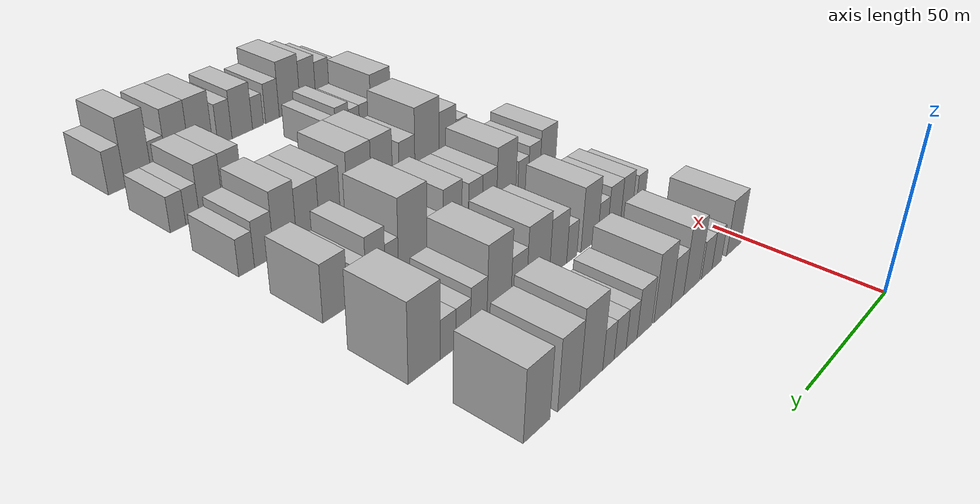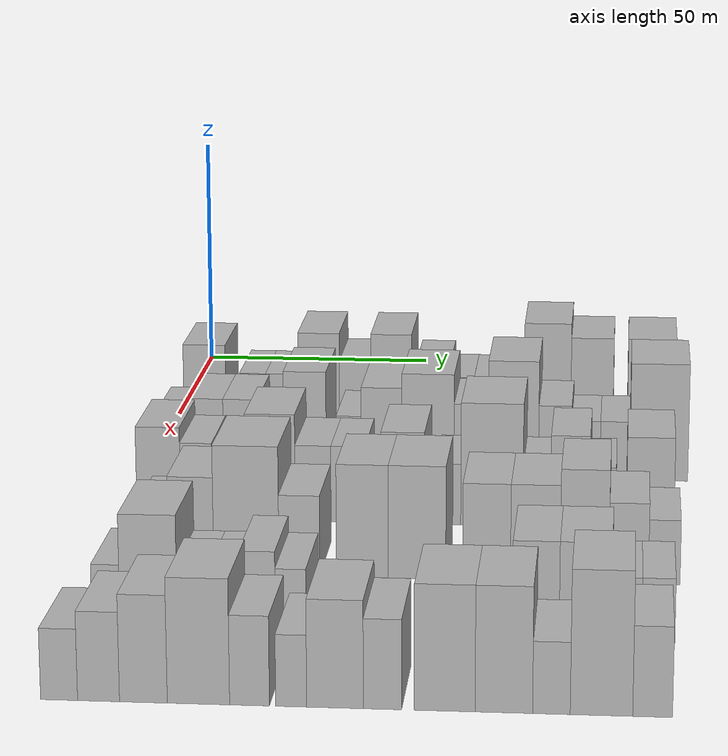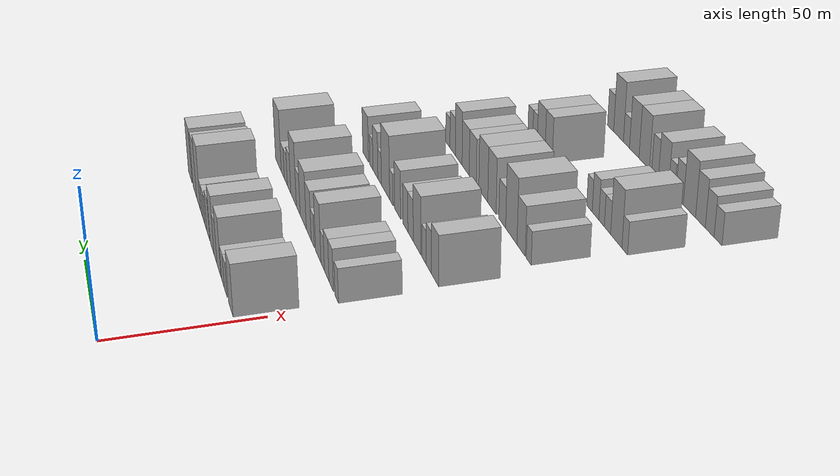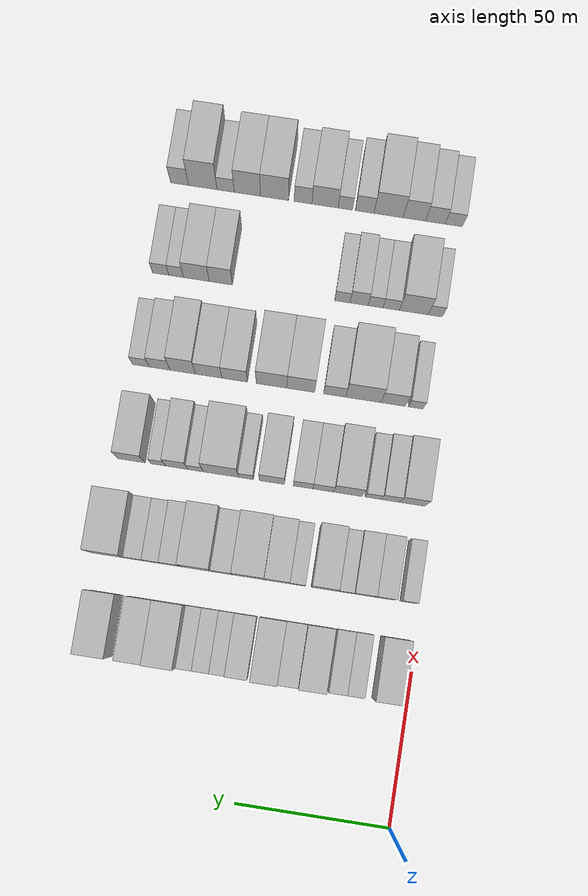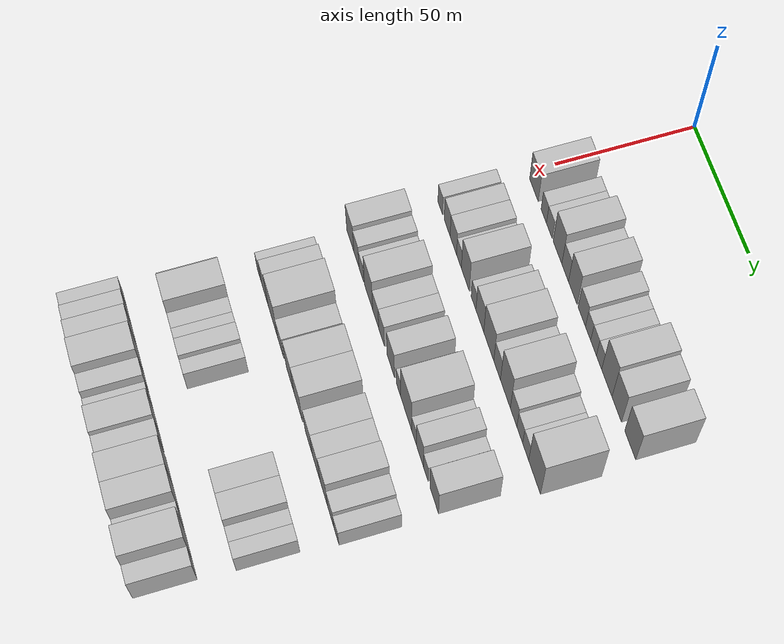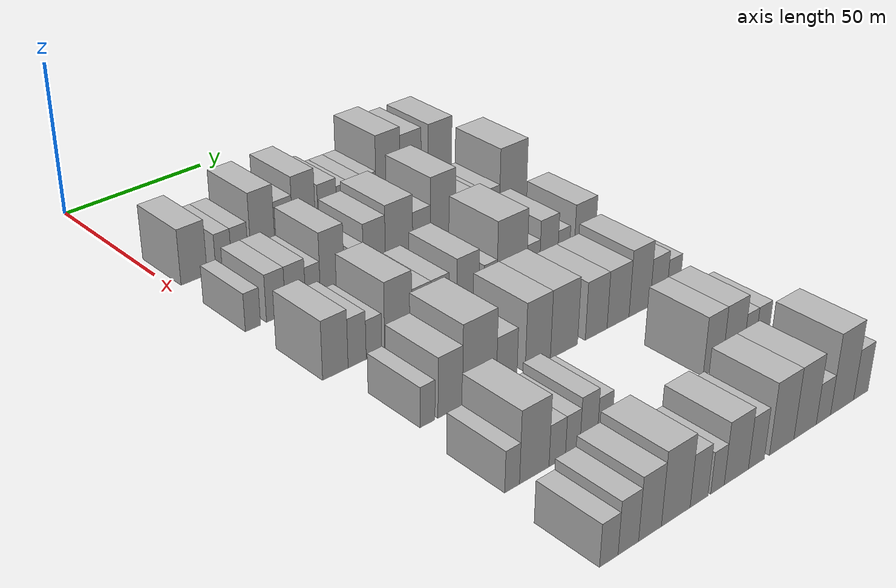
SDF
<sdf version="1.6">
 <world name="default">
  <model name="building_61">
   <static>1</static>
   <pose>50.0000 7.1220 0 0.000000 0.000000 0.000000</pose>
   <link name="link">
    <pose>0 0 9.00 0 0 0</pose>
    <collision name="collision"><geometry><box><size>20.0000 8.9793 18.0000</size></box></geometry></collision>
    <visual name="visual">
     <cast_shadows>0</cast_shadows>
     <geometry><box><size>20.0000 8.9793 18.0000</size></box></geometry>
     <material>
      <script>
       <uri>model://HANNAS_wall/materials/scripts</uri>
       <uri>model://HANNAS_wall/materials/textures</uri>
       <name>vrc/HANNAS_wall</name>
      </script>
     </material>
    </visual>
   </link>
  </model>
  <model name="building_62">
   <static>1</static>
   <pose>50.0000 17.3783 0 0.000000 0.000000 0.000000</pose>
   <link name="link">
    <pose>0 0 6.00 0 0 0</pose>
    <collision name="collision"><geometry><box><size>20.0000 5.5332 12.0000</size></box></geometry></collision>
    <visual name="visual">
     <cast_shadows>0</cast_shadows>
     <geometry><box><size>20.0000 5.5332 12.0000</size></box></geometry>
     <material>
      <script>
       <uri>model://HANNAS_wall/materials/scripts</uri>
       <uri>model://HANNAS_wall/materials/textures</uri>
       <name>vrc/HANNAS_wall</name>
      </script>
     </material>
    </visual>
   </link>
  </model>
  <model name="building_63">
   <static>1</static>
   <pose>50.0000 23.1135 0 0.000000 0.000000 0.000000</pose>
   <link name="link">
    <pose>0 0 6.00 0 0 0</pose>
    <collision name="collision"><geometry><box><size>20.0000 5.9373 12.0000</size></box></geometry></collision>
    <visual name="visual">
     <cast_shadows>0</cast_shadows>
     <geometry><box><size>20.0000 5.9373 12.0000</size></box></geometry>
     <material>
      <script>
       <uri>model://HANNAS_wall/materials/scripts</uri>
       <uri>model://HANNAS_wall/materials/textures</uri>
       <name>vrc/HANNAS_wall</name>
      </script>
     </material>
    </visual>
   </link>
  </model>
  <model name="building_64">
   <static>1</static>
   <pose>50.0000 31.4604 0 0.000000 0.000000 0.000000</pose>
   <link name="link">
    <pose>0 0 10.50 0 0 0</pose>
    <collision name="collision"><geometry><box><size>20.0000 8.7566 21.0000</size></box></geometry></collision>
    <visual name="visual">
     <cast_shadows>0</cast_shadows>
     <geometry><box><size>20.0000 8.7566 21.0000</size></box></geometry>
     <material>
      <script>
       <uri>model://HANNAS_wall/materials/scripts</uri>
       <uri>model://HANNAS_wall/materials/textures</uri>
       <name>vrc/HANNAS_wall</name>
      </script>
     </material>
    </visual>
   </link>
  </model>
  <model name="building_65">
   <static>1</static>
   <pose>50.0000 39.1903 0 0.000000 0.000000 0.000000</pose>
   <link name="link">
    <pose>0 0 7.50 0 0 0</pose>
    <collision name="collision"><geometry><box><size>20.0000 6.7032 15.0000</size></box></geometry></collision>
    <visual name="visual">
     <cast_shadows>0</cast_shadows>
     <geometry><box><size>20.0000 6.7032 15.0000</size></box></geometry>
     <material>
      <script>
       <uri>model://HANNAS_wall/materials/scripts</uri>
       <uri>model://HANNAS_wall/materials/textures</uri>
       <name>vrc/HANNAS_wall</name>
      </script>
     </material>
    </visual>
   </link>
  </model>
  <model name="building_66">
   <static>1</static>
   <pose>50.0000 46.8403 0 0.000000 0.000000 0.000000</pose>
   <link name="link">
    <pose>0 0 10.50 0 0 0</pose>
    <collision name="collision"><geometry><box><size>20.0000 8.5968 21.0000</size></box></geometry></collision>
    <visual name="visual">
     <cast_shadows>0</cast_shadows>
     <geometry><box><size>20.0000 8.5968 21.0000</size></box></geometry>
     <material>
      <script>
       <uri>model://HANNAS_wall/materials/scripts</uri>
       <uri>model://HANNAS_wall/materials/textures</uri>
       <name>vrc/HANNAS_wall</name>
      </script>
     </material>
    </visual>
   </link>
  </model>
  <model name="building_67">
   <static>1</static>
   <pose>50.0000 55.7313 0 0.000000 0.000000 0.000000</pose>
   <link name="link">
    <pose>0 0 7.50 0 0 0</pose>
    <collision name="collision"><geometry><box><size>20.0000 7.1852 15.0000</size></box></geometry></collision>
    <visual name="visual">
     <cast_shadows>0</cast_shadows>
     <geometry><box><size>20.0000 7.1852 15.0000</size></box></geometry>
     <material>
      <script>
       <uri>model://HANNAS_wall/materials/scripts</uri>
       <uri>model://HANNAS_wall/materials/textures</uri>
       <name>vrc/HANNAS_wall</name>
      </script>
     </material>
    </visual>
   </link>
  </model>
  <model name="building_68">
   <static>1</static>
   <pose>50.0000 61.8611 0 0.000000 0.000000 0.000000</pose>
   <link name="link">
    <pose>0 0 6.00 0 0 0</pose>
    <collision name="collision"><geometry><box><size>20.0000 5.0744 12.0000</size></box></geometry></collision>
    <visual name="visual">
     <cast_shadows>0</cast_shadows>
     <geometry><box><size>20.0000 5.0744 12.0000</size></box></geometry>
     <material>
      <script>
       <uri>model://HANNAS_wall/materials/scripts</uri>
       <uri>model://HANNAS_wall/materials/textures</uri>
       <name>vrc/HANNAS_wall</name>
      </script>
     </material>
    </visual>
   </link>
  </model>
  <model name="building_69">
   <static>1</static>
   <pose>50.0000 67.1588 0 0.000000 0.000000 0.000000</pose>
   <link name="link">
    <pose>0 0 6.00 0 0 0</pose>
    <collision name="collision"><geometry><box><size>20.0000 5.5208 12.0000</size></box></geometry></collision>
    <visual name="visual">
     <cast_shadows>0</cast_shadows>
     <geometry><box><size>20.0000 5.5208 12.0000</size></box></geometry>
     <material>
      <script>
       <uri>model://HANNAS_wall/materials/scripts</uri>
       <uri>model://HANNAS_wall/materials/textures</uri>
       <name>vrc/HANNAS_wall</name>
      </script>
     </material>
    </visual>
   </link>
  </model>
  <model name="building_70">
   <static>1</static>
   <pose>50.0000 72.4439 0 0.000000 0.000000 0.000000</pose>
   <link name="link">
    <pose>0 0 6.00 0 0 0</pose>
    <collision name="collision"><geometry><box><size>20.0000 5.0494 12.0000</size></box></geometry></collision>
    <visual name="visual">
     <cast_shadows>0</cast_shadows>
     <geometry><box><size>20.0000 5.0494 12.0000</size></box></geometry>
     <material>
      <script>
       <uri>model://HANNAS_wall/materials/scripts</uri>
       <uri>model://HANNAS_wall/materials/textures</uri>
       <name>vrc/HANNAS_wall</name>
      </script>
     </material>
    </visual>
   </link>
  </model>
  <model name="building_71">
   <static>1</static>
   <pose>50.0000 79.8675 0 0.000000 0.000000 0.000000</pose>
   <link name="link">
    <pose>0 0 12.00 0 0 0</pose>
    <collision name="collision"><geometry><box><size>20.0000 9.7978 24.0000</size></box></geometry></collision>
    <visual name="visual">
     <cast_shadows>0</cast_shadows>
     <geometry><box><size>20.0000 9.7978 24.0000</size></box></geometry>
     <material>
      <script>
       <uri>model://HANNAS_wall/materials/scripts</uri>
       <uri>model://HANNAS_wall/materials/textures</uri>
       <name>vrc/HANNAS_wall</name>
      </script>
     </material>
    </visual>
   </link>
  </model>
  <model name="building_72">
   <static>1</static>
   <pose>50.0000 89.2141 0 0.000000 0.000000 0.000000</pose>
   <link name="link">
    <pose>0 0 10.50 0 0 0</pose>
    <collision name="collision"><geometry><box><size>20.0000 8.8954 21.0000</size></box></geometry></collision>
    <visual name="visual">
     <cast_shadows>0</cast_shadows>
     <geometry><box><size>20.0000 8.8954 21.0000</size></box></geometry>
     <material>
      <script>
       <uri>model://HANNAS_wall/materials/scripts</uri>
       <uri>model://HANNAS_wall/materials/textures</uri>
       <name>vrc/HANNAS_wall</name>
      </script>
     </material>
    </visual>
   </link>
  </model>
  <model name="building_73">
   <static>1</static>
   <pose>50.0000 101.7054 0 0.000000 0.000000 0.000000</pose>
   <link name="link">
    <pose>0 0 10.50 0 0 0</pose>
    <collision name="collision"><geometry><box><size>20.0000 10.0871 21.0000</size></box></geometry></collision>
    <visual name="visual">
     <cast_shadows>0</cast_shadows>
     <geometry><box><size>20.0000 10.0871 21.0000</size></box></geometry>
     <material>
      <script>
       <uri>model://HANNAS_wall/materials/scripts</uri>
       <uri>model://HANNAS_wall/materials/textures</uri>
       <name>vrc/HANNAS_wall</name>
      </script>
     </material>
    </visual>
   </link>
  </model>
  <model name="building_189">
   <static>1</static>
   <pose>82.0000 4.5270 0 0.000000 0.000000 0.000000</pose>
   <link name="link">
    <pose>0 0 6.00 0 0 0</pose>
    <collision name="collision"><geometry><box><size>20.0000 5.0901 12.0000</size></box></geometry></collision>
    <visual name="visual">
     <cast_shadows>0</cast_shadows>
     <geometry><box><size>20.0000 5.0901 12.0000</size></box></geometry>
     <material>
      <script>
       <uri>model://HANNAS_wall/materials/scripts</uri>
       <uri>model://HANNAS_wall/materials/textures</uri>
       <name>vrc/HANNAS_wall</name>
      </script>
     </material>
    </visual>
   </link>
  </model>
  <model name="building_190">
   <static>1</static>
   <pose>82.0000 12.3116 0 0.000000 0.000000 0.000000</pose>
   <link name="link">
    <pose>0 0 7.50 0 0 0</pose>
    <collision name="collision"><geometry><box><size>20.0000 6.4791 15.0000</size></box></geometry></collision>
    <visual name="visual">
     <cast_shadows>0</cast_shadows>
     <geometry><box><size>20.0000 6.4791 15.0000</size></box></geometry>
     <material>
      <script>
       <uri>model://HANNAS_wall/materials/scripts</uri>
       <uri>model://HANNAS_wall/materials/textures</uri>
       <name>vrc/HANNAS_wall</name>
      </script>
     </material>
    </visual>
   </link>
  </model>
  <model name="building_191">
   <static>1</static>
   <pose>82.0000 19.0576 0 0.000000 0.000000 0.000000</pose>
   <link name="link">
    <pose>0 0 7.50 0 0 0</pose>
    <collision name="collision"><geometry><box><size>20.0000 7.0130 15.0000</size></box></geometry></collision>
    <visual name="visual">
     <cast_shadows>0</cast_shadows>
     <geometry><box><size>20.0000 7.0130 15.0000</size></box></geometry>
     <material>
      <script>
       <uri>model://HANNAS_wall/materials/scripts</uri>
       <uri>model://HANNAS_wall/materials/textures</uri>
       <name>vrc/HANNAS_wall</name>
      </script>
     </material>
    </visual>
   </link>
  </model>
  <model name="building_192">
   <static>1</static>
   <pose>82.0000 25.1872 0 0.000000 0.000000 0.000000</pose>
   <link name="link">
    <pose>0 0 6.00 0 0 0</pose>
    <collision name="collision"><geometry><box><size>20.0000 5.2461 12.0000</size></box></geometry></collision>
    <visual name="visual">
     <cast_shadows>0</cast_shadows>
     <geometry><box><size>20.0000 5.2461 12.0000</size></box></geometry>
     <material>
      <script>
       <uri>model://HANNAS_wall/materials/scripts</uri>
       <uri>model://HANNAS_wall/materials/textures</uri>
       <name>vrc/HANNAS_wall</name>
      </script>
     </material>
    </visual>
   </link>
  </model>
  <model name="building_193">
   <static>1</static>
   <pose>82.0000 32.0961 0 0.000000 0.000000 0.000000</pose>
   <link name="link">
    <pose>0 0 10.50 0 0 0</pose>
    <collision name="collision"><geometry><box><size>20.0000 8.5717 21.0000</size></box></geometry></collision>
    <visual name="visual">
     <cast_shadows>0</cast_shadows>
     <geometry><box><size>20.0000 8.5717 21.0000</size></box></geometry>
     <material>
      <script>
       <uri>model://HANNAS_wall/materials/scripts</uri>
       <uri>model://HANNAS_wall/materials/textures</uri>
       <name>vrc/HANNAS_wall</name>
      </script>
     </material>
    </visual>
   </link>
  </model>
  <model name="building_194">
   <static>1</static>
   <pose>82.0000 40.9113 0 0.000000 0.000000 0.000000</pose>
   <link name="link">
    <pose>0 0 6.00 0 0 0</pose>
    <collision name="collision"><geometry><box><size>20.0000 5.0586 12.0000</size></box></geometry></collision>
    <visual name="visual">
     <cast_shadows>0</cast_shadows>
     <geometry><box><size>20.0000 5.0586 12.0000</size></box></geometry>
     <material>
      <script>
       <uri>model://HANNAS_wall/materials/scripts</uri>
       <uri>model://HANNAS_wall/materials/textures</uri>
       <name>vrc/HANNAS_wall</name>
      </script>
     </material>
    </visual>
   </link>
  </model>
  <model name="building_195">
   <static>1</static>
   <pose>82.0000 47.5440 0 0.000000 0.000000 0.000000</pose>
   <link name="link">
    <pose>0 0 9.00 0 0 0</pose>
    <collision name="collision"><geometry><box><size>20.0000 8.2069 18.0000</size></box></geometry></collision>
    <visual name="visual">
     <cast_shadows>0</cast_shadows>
     <geometry><box><size>20.0000 8.2069 18.0000</size></box></geometry>
     <material>
      <script>
       <uri>model://HANNAS_wall/materials/scripts</uri>
       <uri>model://HANNAS_wall/materials/textures</uri>
       <name>vrc/HANNAS_wall</name>
      </script>
     </material>
    </visual>
   </link>
  </model>
  <model name="building_196">
   <static>1</static>
   <pose>82.0000 56.8818 0 0.000000 0.000000 0.000000</pose>
   <link name="link">
    <pose>0 0 10.50 0 0 0</pose>
    <collision name="collision"><geometry><box><size>20.0000 10.4686 21.0000</size></box></geometry></collision>
    <visual name="visual">
     <cast_shadows>0</cast_shadows>
     <geometry><box><size>20.0000 10.4686 21.0000</size></box></geometry>
     <material>
      <script>
       <uri>model://HANNAS_wall/materials/scripts</uri>
       <uri>model://HANNAS_wall/materials/textures</uri>
       <name>vrc/HANNAS_wall</name>
      </script>
     </material>
    </visual>
   </link>
  </model>
  <model name="building_197">
   <static>1</static>
   <pose>82.0000 65.5435 0 0.000000 0.000000 0.000000</pose>
   <link name="link">
    <pose>0 0 7.50 0 0 0</pose>
    <collision name="collision"><geometry><box><size>20.0000 6.8547 15.0000</size></box></geometry></collision>
    <visual name="visual">
     <cast_shadows>0</cast_shadows>
     <geometry><box><size>20.0000 6.8547 15.0000</size></box></geometry>
     <material>
      <script>
       <uri>model://HANNAS_wall/materials/scripts</uri>
       <uri>model://HANNAS_wall/materials/textures</uri>
       <name>vrc/HANNAS_wall</name>
      </script>
     </material>
    </visual>
   </link>
  </model>
  <model name="building_198">
   <static>1</static>
   <pose>82.0000 74.0062 0 0.000000 0.000000 0.000000</pose>
   <link name="link">
    <pose>0 0 12.00 0 0 0</pose>
    <collision name="collision"><geometry><box><size>20.0000 10.0708 24.0000</size></box></geometry></collision>
    <visual name="visual">
     <cast_shadows>0</cast_shadows>
     <geometry><box><size>20.0000 10.0708 24.0000</size></box></geometry>
     <material>
      <script>
       <uri>model://HANNAS_wall/materials/scripts</uri>
       <uri>model://HANNAS_wall/materials/textures</uri>
       <name>vrc/HANNAS_wall</name>
      </script>
     </material>
    </visual>
   </link>
  </model>
  <model name="building_199">
   <static>1</static>
   <pose>82.0000 82.3226 0 0.000000 0.000000 0.000000</pose>
   <link name="link">
    <pose>0 0 7.50 0 0 0</pose>
    <collision name="collision"><geometry><box><size>20.0000 6.5620 15.0000</size></box></geometry></collision>
    <visual name="visual">
     <cast_shadows>0</cast_shadows>
     <geometry><box><size>20.0000 6.5620 15.0000</size></box></geometry>
     <material>
      <script>
       <uri>model://HANNAS_wall/materials/scripts</uri>
       <uri>model://HANNAS_wall/materials/textures</uri>
       <name>vrc/HANNAS_wall</name>
      </script>
     </material>
    </visual>
   </link>
  </model>
  <model name="building_200">
   <static>1</static>
   <pose>82.0000 88.4710 0 0.000000 0.000000 0.000000</pose>
   <link name="link">
    <pose>0 0 6.00 0 0 0</pose>
    <collision name="collision"><geometry><box><size>20.0000 5.7347 12.0000</size></box></geometry></collision>
    <visual name="visual">
     <cast_shadows>0</cast_shadows>
     <geometry><box><size>20.0000 5.7347 12.0000</size></box></geometry>
     <material>
      <script>
       <uri>model://HANNAS_wall/materials/scripts</uri>
       <uri>model://HANNAS_wall/materials/textures</uri>
       <name>vrc/HANNAS_wall</name>
      </script>
     </material>
    </visual>
   </link>
  </model>
  <model name="building_201">
   <static>1</static>
   <pose>82.0000 94.2968 0 0.000000 0.000000 0.000000</pose>
   <link name="link">
    <pose>0 0 6.00 0 0 0</pose>
    <collision name="collision"><geometry><box><size>20.0000 5.9169 12.0000</size></box></geometry></collision>
    <visual name="visual">
     <cast_shadows>0</cast_shadows>
     <geometry><box><size>20.0000 5.9169 12.0000</size></box></geometry>
     <material>
      <script>
       <uri>model://HANNAS_wall/materials/scripts</uri>
       <uri>model://HANNAS_wall/materials/textures</uri>
       <name>vrc/HANNAS_wall</name>
      </script>
     </material>
    </visual>
   </link>
  </model>
  <model name="building_202">
   <static>1</static>
   <pose>82.0000 103.0330 0 0.000000 0.000000 0.000000</pose>
   <link name="link">
    <pose>0 0 12.00 0 0 0</pose>
    <collision name="collision"><geometry><box><size>20.0000 11.5555 24.0000</size></box></geometry></collision>
    <visual name="visual">
     <cast_shadows>0</cast_shadows>
     <geometry><box><size>20.0000 11.5555 24.0000</size></box></geometry>
     <material>
      <script>
       <uri>model://HANNAS_wall/materials/scripts</uri>
       <uri>model://HANNAS_wall/materials/textures</uri>
       <name>vrc/HANNAS_wall</name>
      </script>
     </material>
    </visual>
   </link>
  </model>
  <model name="building_313">
   <static>1</static>
   <pose>114.0000 7.5327 0 0.000000 0.000000 0.000000</pose>
   <link name="link">
    <pose>0 0 9.00 0 0 0</pose>
    <collision name="collision"><geometry><box><size>20.0000 8.4498 18.0000</size></box></geometry></collision>
    <visual name="visual">
     <cast_shadows>0</cast_shadows>
     <geometry><box><size>20.0000 8.4498 18.0000</size></box></geometry>
     <material>
      <script>
       <uri>model://HANNAS_wall/materials/scripts</uri>
       <uri>model://HANNAS_wall/materials/textures</uri>
       <name>vrc/HANNAS_wall</name>
      </script>
     </material>
    </visual>
   </link>
  </model>
  <model name="building_314">
   <static>1</static>
   <pose>114.0000 14.8176 0 0.000000 0.000000 0.000000</pose>
   <link name="link">
    <pose>0 0 7.50 0 0 0</pose>
    <collision name="collision"><geometry><box><size>20.0000 6.1200 15.0000</size></box></geometry></collision>
    <visual name="visual">
     <cast_shadows>0</cast_shadows>
     <geometry><box><size>20.0000 6.1200 15.0000</size></box></geometry>
     <material>
      <script>
       <uri>model://HANNAS_wall/materials/scripts</uri>
       <uri>model://HANNAS_wall/materials/textures</uri>
       <name>vrc/HANNAS_wall</name>
      </script>
     </material>
    </visual>
   </link>
  </model>
  <model name="building_315">
   <static>1</static>
   <pose>114.0000 20.5576 0 0.000000 0.000000 0.000000</pose>
   <link name="link">
    <pose>0 0 6.00 0 0 0</pose>
    <collision name="collision"><geometry><box><size>20.0000 5.3600 12.0000</size></box></geometry></collision>
    <visual name="visual">
     <cast_shadows>0</cast_shadows>
     <geometry><box><size>20.0000 5.3600 12.0000</size></box></geometry>
     <material>
      <script>
       <uri>model://HANNAS_wall/materials/scripts</uri>
       <uri>model://HANNAS_wall/materials/textures</uri>
       <name>vrc/HANNAS_wall</name>
      </script>
     </material>
    </visual>
   </link>
  </model>
  <model name="building_316">
   <static>1</static>
   <pose>114.0000 29.0070 0 0.000000 0.000000 0.000000</pose>
   <link name="link">
    <pose>0 0 10.50 0 0 0</pose>
    <collision name="collision"><geometry><box><size>20.0000 9.5388 21.0000</size></box></geometry></collision>
    <visual name="visual">
     <cast_shadows>0</cast_shadows>
     <geometry><box><size>20.0000 9.5388 21.0000</size></box></geometry>
     <material>
      <script>
       <uri>model://HANNAS_wall/materials/scripts</uri>
       <uri>model://HANNAS_wall/materials/textures</uri>
       <name>vrc/HANNAS_wall</name>
      </script>
     </material>
    </visual>
   </link>
  </model>
  <model name="building_317">
   <static>1</static>
   <pose>114.0000 37.2018 0 0.000000 0.000000 0.000000</pose>
   <link name="link">
    <pose>0 0 7.50 0 0 0</pose>
    <collision name="collision"><geometry><box><size>20.0000 6.8510 15.0000</size></box></geometry></collision>
    <visual name="visual">
     <cast_shadows>0</cast_shadows>
     <geometry><box><size>20.0000 6.8510 15.0000</size></box></geometry>
     <material>
      <script>
       <uri>model://HANNAS_wall/materials/scripts</uri>
       <uri>model://HANNAS_wall/materials/textures</uri>
       <name>vrc/HANNAS_wall</name>
      </script>
     </material>
    </visual>
   </link>
  </model>
  <model name="building_318">
   <static>1</static>
   <pose>114.0000 43.8944 0 0.000000 0.000000 0.000000</pose>
   <link name="link">
    <pose>0 0 7.50 0 0 0</pose>
    <collision name="collision"><geometry><box><size>20.0000 6.5343 15.0000</size></box></geometry></collision>
    <visual name="visual">
     <cast_shadows>0</cast_shadows>
     <geometry><box><size>20.0000 6.5343 15.0000</size></box></geometry>
     <material>
      <script>
       <uri>model://HANNAS_wall/materials/scripts</uri>
       <uri>model://HANNAS_wall/materials/textures</uri>
       <name>vrc/HANNAS_wall</name>
      </script>
     </material>
    </visual>
   </link>
  </model>
  <model name="building_319">
   <static>1</static>
   <pose>114.0000 54.3062 0 0.000000 0.000000 0.000000</pose>
   <link name="link">
    <pose>0 0 9.00 0 0 0</pose>
    <collision name="collision"><geometry><box><size>20.0000 8.2892 18.0000</size></box></geometry></collision>
    <visual name="visual">
     <cast_shadows>0</cast_shadows>
     <geometry><box><size>20.0000 8.2892 18.0000</size></box></geometry>
     <material>
      <script>
       <uri>model://HANNAS_wall/materials/scripts</uri>
       <uri>model://HANNAS_wall/materials/textures</uri>
       <name>vrc/HANNAS_wall</name>
      </script>
     </material>
    </visual>
   </link>
  </model>
  <model name="building_320">
   <static>1</static>
   <pose>114.0000 62.9069 0 0.000000 0.000000 0.000000</pose>
   <link name="link">
    <pose>0 0 6.00 0 0 0</pose>
    <collision name="collision"><geometry><box><size>20.0000 4.9121 12.0000</size></box></geometry></collision>
    <visual name="visual">
     <cast_shadows>0</cast_shadows>
     <geometry><box><size>20.0000 4.9121 12.0000</size></box></geometry>
     <material>
      <script>
       <uri>model://HANNAS_wall/materials/scripts</uri>
       <uri>model://HANNAS_wall/materials/textures</uri>
       <name>vrc/HANNAS_wall</name>
      </script>
     </material>
    </visual>
   </link>
  </model>
  <model name="building_321">
   <static>1</static>
   <pose>114.0000 71.2560 0 0.000000 0.000000 0.000000</pose>
   <link name="link">
    <pose>0 0 12.00 0 0 0</pose>
    <collision name="collision"><geometry><box><size>20.0000 11.7862 24.0000</size></box></geometry></collision>
    <visual name="visual">
     <cast_shadows>0</cast_shadows>
     <geometry><box><size>20.0000 11.7862 24.0000</size></box></geometry>
     <material>
      <script>
       <uri>model://HANNAS_wall/materials/scripts</uri>
       <uri>model://HANNAS_wall/materials/textures</uri>
       <name>vrc/HANNAS_wall</name>
      </script>
     </material>
    </visual>
   </link>
  </model>
  <model name="building_322">
   <static>1</static>
   <pose>114.0000 79.7480 0 0.000000 0.000000 0.000000</pose>
   <link name="link">
    <pose>0 0 6.00 0 0 0</pose>
    <collision name="collision"><geometry><box><size>20.0000 5.1977 12.0000</size></box></geometry></collision>
    <visual name="visual">
     <cast_shadows>0</cast_shadows>
     <geometry><box><size>20.0000 5.1977 12.0000</size></box></geometry>
     <material>
      <script>
       <uri>model://HANNAS_wall/materials/scripts</uri>
       <uri>model://HANNAS_wall/materials/textures</uri>
       <name>vrc/HANNAS_wall</name>
      </script>
     </material>
    </visual>
   </link>
  </model>
  <model name="building_323">
   <static>1</static>
   <pose>114.0000 86.0454 0 0.000000 0.000000 0.000000</pose>
   <link name="link">
    <pose>0 0 9.00 0 0 0</pose>
    <collision name="collision"><geometry><box><size>20.0000 7.3970 18.0000</size></box></geometry></collision>
    <visual name="visual">
     <cast_shadows>0</cast_shadows>
     <geometry><box><size>20.0000 7.3970 18.0000</size></box></geometry>
     <material>
      <script>
       <uri>model://HANNAS_wall/materials/scripts</uri>
       <uri>model://HANNAS_wall/materials/textures</uri>
       <name>vrc/HANNAS_wall</name>
      </script>
     </material>
    </visual>
   </link>
  </model>
  <model name="building_324">
   <static>1</static>
   <pose>114.0000 92.2025 0 0.000000 0.000000 0.000000</pose>
   <link name="link">
    <pose>0 0 6.00 0 0 0</pose>
    <collision name="collision"><geometry><box><size>20.0000 4.9174 12.0000</size></box></geometry></collision>
    <visual name="visual">
     <cast_shadows>0</cast_shadows>
     <geometry><box><size>20.0000 4.9174 12.0000</size></box></geometry>
     <material>
      <script>
       <uri>model://HANNAS_wall/materials/scripts</uri>
       <uri>model://HANNAS_wall/materials/textures</uri>
       <name>vrc/HANNAS_wall</name>
      </script>
     </material>
    </visual>
   </link>
  </model>
  <model name="building_325">
   <static>1</static>
   <pose>114.0000 101.1547 0 0.000000 0.000000 0.000000</pose>
   <link name="link">
    <pose>0 0 9.00 0 0 0</pose>
    <collision name="collision"><geometry><box><size>20.0000 8.9869 18.0000</size></box></geometry></collision>
    <visual name="visual">
     <cast_shadows>0</cast_shadows>
     <geometry><box><size>20.0000 8.9869 18.0000</size></box></geometry>
     <material>
      <script>
       <uri>model://HANNAS_wall/materials/scripts</uri>
       <uri>model://HANNAS_wall/materials/textures</uri>
       <name>vrc/HANNAS_wall</name>
      </script>
     </material>
    </visual>
   </link>
  </model>
  <model name="building_428">
   <static>1</static>
   <pose>146.0000 10.9830 0 0.000000 0.000000 0.000000</pose>
   <link name="link">
    <pose>0 0 6.00 0 0 0</pose>
    <collision name="collision"><geometry><box><size>20.0000 4.9091 12.0000</size></box></geometry></collision>
    <visual name="visual">
     <cast_shadows>0</cast_shadows>
     <geometry><box><size>20.0000 4.9091 12.0000</size></box></geometry>
     <material>
      <script>
       <uri>model://HANNAS_wall/materials/scripts</uri>
       <uri>model://HANNAS_wall/materials/textures</uri>
       <name>vrc/HANNAS_wall</name>
      </script>
     </material>
    </visual>
   </link>
  </model>
  <model name="building_429">
   <static>1</static>
   <pose>146.0000 18.5628 0 0.000000 0.000000 0.000000</pose>
   <link name="link">
    <pose>0 0 9.00 0 0 0</pose>
    <collision name="collision"><geometry><box><size>20.0000 8.2505 18.0000</size></box></geometry></collision>
    <visual name="visual">
     <cast_shadows>0</cast_shadows>
     <geometry><box><size>20.0000 8.2505 18.0000</size></box></geometry>
     <material>
      <script>
       <uri>model://HANNAS_wall/materials/scripts</uri>
       <uri>model://HANNAS_wall/materials/textures</uri>
       <name>vrc/HANNAS_wall</name>
      </script>
     </material>
    </visual>
   </link>
  </model>
  <model name="building_430">
   <static>1</static>
   <pose>146.0000 28.5990 0 0.000000 0.000000 0.000000</pose>
   <link name="link">
    <pose>0 0 12.00 0 0 0</pose>
    <collision name="collision"><geometry><box><size>20.0000 11.8220 24.0000</size></box></geometry></collision>
    <visual name="visual">
     <cast_shadows>0</cast_shadows>
     <geometry><box><size>20.0000 11.8220 24.0000</size></box></geometry>
     <material>
      <script>
       <uri>model://HANNAS_wall/materials/scripts</uri>
       <uri>model://HANNAS_wall/materials/textures</uri>
       <name>vrc/HANNAS_wall</name>
      </script>
     </material>
    </visual>
   </link>
  </model>
  <model name="building_431">
   <static>1</static>
   <pose>146.0000 38.1991 0 0.000000 0.000000 0.000000</pose>
   <link name="link">
    <pose>0 0 7.50 0 0 0</pose>
    <collision name="collision"><geometry><box><size>20.0000 7.3780 15.0000</size></box></geometry></collision>
    <visual name="visual">
     <cast_shadows>0</cast_shadows>
     <geometry><box><size>20.0000 7.3780 15.0000</size></box></geometry>
     <material>
      <script>
       <uri>model://HANNAS_wall/materials/scripts</uri>
       <uri>model://HANNAS_wall/materials/textures</uri>
       <name>vrc/HANNAS_wall</name>
      </script>
     </material>
    </visual>
   </link>
  </model>
  <model name="building_432">
   <static>1</static>
   <pose>146.0000 49.5521 0 0.000000 0.000000 0.000000</pose>
   <link name="link">
    <pose>0 0 10.50 0 0 0</pose>
    <collision name="collision"><geometry><box><size>20.0000 9.3280 21.0000</size></box></geometry></collision>
    <visual name="visual">
     <cast_shadows>0</cast_shadows>
     <geometry><box><size>20.0000 9.3280 21.0000</size></box></geometry>
     <material>
      <script>
       <uri>model://HANNAS_wall/materials/scripts</uri>
       <uri>model://HANNAS_wall/materials/textures</uri>
       <name>vrc/HANNAS_wall</name>
      </script>
     </material>
    </visual>
   </link>
  </model>
  <model name="building_433">
   <static>1</static>
   <pose>146.0000 59.3874 0 0.000000 0.000000 0.000000</pose>
   <link name="link">
    <pose>0 0 10.50 0 0 0</pose>
    <collision name="collision"><geometry><box><size>20.0000 10.3426 21.0000</size></box></geometry></collision>
    <visual name="visual">
     <cast_shadows>0</cast_shadows>
     <geometry><box><size>20.0000 10.3426 21.0000</size></box></geometry>
     <material>
      <script>
       <uri>model://HANNAS_wall/materials/scripts</uri>
       <uri>model://HANNAS_wall/materials/textures</uri>
       <name>vrc/HANNAS_wall</name>
      </script>
     </material>
    </visual>
   </link>
  </model>
  <model name="building_434">
   <static>1</static>
   <pose>146.0000 71.8490 0 0.000000 0.000000 0.000000</pose>
   <link name="link">
    <pose>0 0 9.00 0 0 0</pose>
    <collision name="collision"><geometry><box><size>20.0000 8.5806 18.0000</size></box></geometry></collision>
    <visual name="visual">
     <cast_shadows>0</cast_shadows>
     <geometry><box><size>20.0000 8.5806 18.0000</size></box></geometry>
     <material>
      <script>
       <uri>model://HANNAS_wall/materials/scripts</uri>
       <uri>model://HANNAS_wall/materials/textures</uri>
       <name>vrc/HANNAS_wall</name>
      </script>
     </material>
    </visual>
   </link>
  </model>
  <model name="building_435">
   <static>1</static>
   <pose>146.0000 80.5757 0 0.000000 0.000000 0.000000</pose>
   <link name="link">
    <pose>0 0 9.00 0 0 0</pose>
    <collision name="collision"><geometry><box><size>20.0000 8.8727 18.0000</size></box></geometry></collision>
    <visual name="visual">
     <cast_shadows>0</cast_shadows>
     <geometry><box><size>20.0000 8.8727 18.0000</size></box></geometry>
     <material>
      <script>
       <uri>model://HANNAS_wall/materials/scripts</uri>
       <uri>model://HANNAS_wall/materials/textures</uri>
       <name>vrc/HANNAS_wall</name>
      </script>
     </material>
    </visual>
   </link>
  </model>
  <model name="building_436">
   <static>1</static>
   <pose>146.0000 89.3455 0 0.000000 0.000000 0.000000</pose>
   <link name="link">
    <pose>0 0 10.50 0 0 0</pose>
    <collision name="collision"><geometry><box><size>20.0000 8.6671 21.0000</size></box></geometry></collision>
    <visual name="visual">
     <cast_shadows>0</cast_shadows>
     <geometry><box><size>20.0000 8.6671 21.0000</size></box></geometry>
     <material>
      <script>
       <uri>model://HANNAS_wall/materials/scripts</uri>
       <uri>model://HANNAS_wall/materials/textures</uri>
       <name>vrc/HANNAS_wall</name>
      </script>
     </material>
    </visual>
   </link>
  </model>
  <model name="building_437">
   <static>1</static>
   <pose>146.0000 97.2025 0 0.000000 0.000000 0.000000</pose>
   <link name="link">
    <pose>0 0 7.50 0 0 0</pose>
    <collision name="collision"><geometry><box><size>20.0000 7.0468 15.0000</size></box></geometry></collision>
    <visual name="visual">
     <cast_shadows>0</cast_shadows>
     <geometry><box><size>20.0000 7.0468 15.0000</size></box></geometry>
     <material>
      <script>
       <uri>model://HANNAS_wall/materials/scripts</uri>
       <uri>model://HANNAS_wall/materials/textures</uri>
       <name>vrc/HANNAS_wall</name>
      </script>
     </material>
    </visual>
   </link>
  </model>
  <model name="building_438">
   <static>1</static>
   <pose>146.0000 103.5293 0 0.000000 0.000000 0.000000</pose>
   <link name="link">
    <pose>0 0 6.00 0 0 0</pose>
    <collision name="collision"><geometry><box><size>20.0000 5.6067 12.0000</size></box></geometry></collision>
    <visual name="visual">
     <cast_shadows>0</cast_shadows>
     <geometry><box><size>20.0000 5.6067 12.0000</size></box></geometry>
     <material>
      <script>
       <uri>model://HANNAS_wall/materials/scripts</uri>
       <uri>model://HANNAS_wall/materials/textures</uri>
       <name>vrc/HANNAS_wall</name>
      </script>
     </material>
    </visual>
   </link>
  </model>
  <model name="building_554">
   <static>1</static>
   <pose>178.0000 8.8458 0 0.000000 0.000000 0.000000</pose>
   <link name="link">
    <pose>0 0 6.00 0 0 0</pose>
    <collision name="collision"><geometry><box><size>20.0000 4.8175 12.0000</size></box></geometry></collision>
    <visual name="visual">
     <cast_shadows>0</cast_shadows>
     <geometry><box><size>20.0000 4.8175 12.0000</size></box></geometry>
     <material>
      <script>
       <uri>model://HANNAS_wall/materials/scripts</uri>
       <uri>model://HANNAS_wall/materials/textures</uri>
       <name>vrc/HANNAS_wall</name>
      </script>
     </material>
    </visual>
   </link>
  </model>
  <model name="building_555">
   <static>1</static>
   <pose>178.0000 16.1535 0 0.000000 0.000000 0.000000</pose>
   <link name="link">
    <pose>0 0 10.50 0 0 0</pose>
    <collision name="collision"><geometry><box><size>20.0000 9.7979 21.0000</size></box></geometry></collision>
    <visual name="visual">
     <cast_shadows>0</cast_shadows>
     <geometry><box><size>20.0000 9.7979 21.0000</size></box></geometry>
     <material>
      <script>
       <uri>model://HANNAS_wall/materials/scripts</uri>
       <uri>model://HANNAS_wall/materials/textures</uri>
       <name>vrc/HANNAS_wall</name>
      </script>
     </material>
    </visual>
   </link>
  </model>
  <model name="building_556">
   <static>1</static>
   <pose>178.0000 23.8329 0 0.000000 0.000000 0.000000</pose>
   <link name="link">
    <pose>0 0 6.00 0 0 0</pose>
    <collision name="collision"><geometry><box><size>20.0000 5.5610 12.0000</size></box></geometry></collision>
    <visual name="visual">
     <cast_shadows>0</cast_shadows>
     <geometry><box><size>20.0000 5.5610 12.0000</size></box></geometry>
     <material>
      <script>
       <uri>model://HANNAS_wall/materials/scripts</uri>
       <uri>model://HANNAS_wall/materials/textures</uri>
       <name>vrc/HANNAS_wall</name>
      </script>
     </material>
    </visual>
   </link>
  </model>
  <model name="building_557">
   <static>1</static>
   <pose>178.0000 29.1167 0 0.000000 0.000000 0.000000</pose>
   <link name="link">
    <pose>0 0 6.00 0 0 0</pose>
    <collision name="collision"><geometry><box><size>20.0000 5.0067 12.0000</size></box></geometry></collision>
    <visual name="visual">
     <cast_shadows>0</cast_shadows>
     <geometry><box><size>20.0000 5.0067 12.0000</size></box></geometry>
     <material>
      <script>
       <uri>model://HANNAS_wall/materials/scripts</uri>
       <uri>model://HANNAS_wall/materials/textures</uri>
       <name>vrc/HANNAS_wall</name>
      </script>
     </material>
    </visual>
   </link>
  </model>
  <model name="building_558">
   <static>1</static>
   <pose>178.0000 34.6912 0 0.000000 0.000000 0.000000</pose>
   <link name="link">
    <pose>0 0 7.50 0 0 0</pose>
    <collision name="collision"><geometry><box><size>20.0000 6.1423 15.0000</size></box></geometry></collision>
    <visual name="visual">
     <cast_shadows>0</cast_shadows>
     <geometry><box><size>20.0000 6.1423 15.0000</size></box></geometry>
     <material>
      <script>
       <uri>model://HANNAS_wall/materials/scripts</uri>
       <uri>model://HANNAS_wall/materials/textures</uri>
       <name>vrc/HANNAS_wall</name>
      </script>
     </material>
    </visual>
   </link>
  </model>
  <model name="building_559">
   <static>1</static>
   <pose>178.0000 40.3673 0 0.000000 0.000000 0.000000</pose>
   <link name="link">
    <pose>0 0 6.00 0 0 0</pose>
    <collision name="collision"><geometry><box><size>20.0000 5.2099 12.0000</size></box></geometry></collision>
    <visual name="visual">
     <cast_shadows>0</cast_shadows>
     <geometry><box><size>20.0000 5.2099 12.0000</size></box></geometry>
     <material>
      <script>
       <uri>model://HANNAS_wall/materials/scripts</uri>
       <uri>model://HANNAS_wall/materials/textures</uri>
       <name>vrc/HANNAS_wall</name>
      </script>
     </material>
    </visual>
   </link>
  </model>
  <model name="building_560">
   <static>1</static>
   <pose>178.0000 81.7242 0 0.000000 0.000000 0.000000</pose>
   <link name="link">
    <pose>0 0 9.00 0 0 0</pose>
    <collision name="collision"><geometry><box><size>20.0000 7.8346 18.0000</size></box></geometry></collision>
    <visual name="visual">
     <cast_shadows>0</cast_shadows>
     <geometry><box><size>20.0000 7.8346 18.0000</size></box></geometry>
     <material>
      <script>
       <uri>model://HANNAS_wall/materials/scripts</uri>
       <uri>model://HANNAS_wall/materials/textures</uri>
       <name>vrc/HANNAS_wall</name>
      </script>
     </material>
    </visual>
   </link>
  </model>
  <model name="building_561">
   <static>1</static>
   <pose>178.0000 90.0106 0 0.000000 0.000000 0.000000</pose>
   <link name="link">
    <pose>0 0 9.00 0 0 0</pose>
    <collision name="collision"><geometry><box><size>20.0000 8.7382 18.0000</size></box></geometry></collision>
    <visual name="visual">
     <cast_shadows>0</cast_shadows>
     <geometry><box><size>20.0000 8.7382 18.0000</size></box></geometry>
     <material>
      <script>
       <uri>model://HANNAS_wall/materials/scripts</uri>
       <uri>model://HANNAS_wall/materials/textures</uri>
       <name>vrc/HANNAS_wall</name>
      </script>
     </material>
    </visual>
   </link>
  </model>
  <model name="building_562">
   <static>1</static>
   <pose>178.0000 96.9016 0 0.000000 0.000000 0.000000</pose>
   <link name="link">
    <pose>0 0 6.00 0 0 0</pose>
    <collision name="collision"><geometry><box><size>20.0000 5.0439 12.0000</size></box></geometry></collision>
    <visual name="visual">
     <cast_shadows>0</cast_shadows>
     <geometry><box><size>20.0000 5.0439 12.0000</size></box></geometry>
     <material>
      <script>
       <uri>model://HANNAS_wall/materials/scripts</uri>
       <uri>model://HANNAS_wall/materials/textures</uri>
       <name>vrc/HANNAS_wall</name>
      </script>
     </material>
    </visual>
   </link>
  </model>
  <model name="building_563">
   <static>1</static>
   <pose>178.0000 102.2026 0 0.000000 0.000000 0.000000</pose>
   <link name="link">
    <pose>0 0 6.00 0 0 0</pose>
    <collision name="collision"><geometry><box><size>20.0000 5.5580 12.0000</size></box></geometry></collision>
    <visual name="visual">
     <cast_shadows>0</cast_shadows>
     <geometry><box><size>20.0000 5.5580 12.0000</size></box></geometry>
     <material>
      <script>
       <uri>model://HANNAS_wall/materials/scripts</uri>
       <uri>model://HANNAS_wall/materials/textures</uri>
       <name>vrc/HANNAS_wall</name>
      </script>
     </material>
    </visual>
   </link>
  </model>
  <model name="building_676">
   <static>1</static>
   <pose>210.0000 7.0171 0 0.000000 0.000000 0.000000</pose>
   <link name="link">
    <pose>0 0 6.00 0 0 0</pose>
    <collision name="collision"><geometry><box><size>20.0000 5.9503 12.0000</size></box></geometry></collision>
    <visual name="visual">
     <cast_shadows>0</cast_shadows>
     <geometry><box><size>20.0000 5.9503 12.0000</size></box></geometry>
     <material>
      <script>
       <uri>model://HANNAS_wall/materials/scripts</uri>
       <uri>model://HANNAS_wall/materials/textures</uri>
       <name>vrc/HANNAS_wall</name>
      </script>
     </material>
    </visual>
   </link>
  </model>
  <model name="building_677">
   <static>1</static>
   <pose>210.0000 13.3615 0 0.000000 0.000000 0.000000</pose>
   <link name="link">
    <pose>0 0 7.50 0 0 0</pose>
    <collision name="collision"><geometry><box><size>20.0000 6.7384 15.0000</size></box></geometry></collision>
    <visual name="visual">
     <cast_shadows>0</cast_shadows>
     <geometry><box><size>20.0000 6.7384 15.0000</size></box></geometry>
     <material>
      <script>
       <uri>model://HANNAS_wall/materials/scripts</uri>
       <uri>model://HANNAS_wall/materials/textures</uri>
       <name>vrc/HANNAS_wall</name>
      </script>
     </material>
    </visual>
   </link>
  </model>
  <model name="building_678">
   <static>1</static>
   <pose>210.0000 20.5635 0 0.000000 0.000000 0.000000</pose>
   <link name="link">
    <pose>0 0 9.00 0 0 0</pose>
    <collision name="collision"><geometry><box><size>20.0000 7.6656 18.0000</size></box></geometry></collision>
    <visual name="visual">
     <cast_shadows>0</cast_shadows>
     <geometry><box><size>20.0000 7.6656 18.0000</size></box></geometry>
     <material>
      <script>
       <uri>model://HANNAS_wall/materials/scripts</uri>
       <uri>model://HANNAS_wall/materials/textures</uri>
       <name>vrc/HANNAS_wall</name>
      </script>
     </material>
    </visual>
   </link>
  </model>
  <model name="building_679">
   <static>1</static>
   <pose>210.0000 29.3756 0 0.000000 0.000000 0.000000</pose>
   <link name="link">
    <pose>0 0 10.50 0 0 0</pose>
    <collision name="collision"><geometry><box><size>20.0000 9.9586 21.0000</size></box></geometry></collision>
    <visual name="visual">
     <cast_shadows>0</cast_shadows>
     <geometry><box><size>20.0000 9.9586 21.0000</size></box></geometry>
     <material>
      <script>
       <uri>model://HANNAS_wall/materials/scripts</uri>
       <uri>model://HANNAS_wall/materials/textures</uri>
       <name>vrc/HANNAS_wall</name>
      </script>
     </material>
    </visual>
   </link>
  </model>
  <model name="building_680">
   <static>1</static>
   <pose>210.0000 37.5317 0 0.000000 0.000000 0.000000</pose>
   <link name="link">
    <pose>0 0 7.50 0 0 0</pose>
    <collision name="collision"><geometry><box><size>20.0000 6.3536 15.0000</size></box></geometry></collision>
    <visual name="visual">
     <cast_shadows>0</cast_shadows>
     <geometry><box><size>20.0000 6.3536 15.0000</size></box></geometry>
     <material>
      <script>
       <uri>model://HANNAS_wall/materials/scripts</uri>
       <uri>model://HANNAS_wall/materials/textures</uri>
       <name>vrc/HANNAS_wall</name>
      </script>
     </material>
    </visual>
   </link>
  </model>
  <model name="building_681">
   <static>1</static>
   <pose>210.0000 44.1661 0 0.000000 0.000000 0.000000</pose>
   <link name="link">
    <pose>0 0 6.00 0 0 0</pose>
    <collision name="collision"><geometry><box><size>20.0000 4.9151 12.0000</size></box></geometry></collision>
    <visual name="visual">
     <cast_shadows>0</cast_shadows>
     <geometry><box><size>20.0000 4.9151 12.0000</size></box></geometry>
     <material>
      <script>
       <uri>model://HANNAS_wall/materials/scripts</uri>
       <uri>model://HANNAS_wall/materials/textures</uri>
       <name>vrc/HANNAS_wall</name>
      </script>
     </material>
    </visual>
   </link>
  </model>
  <model name="building_682">
   <static>1</static>
   <pose>210.0000 51.1203 0 0.000000 0.000000 0.000000</pose>
   <link name="link">
    <pose>0 0 9.00 0 0 0</pose>
    <collision name="collision"><geometry><box><size>20.0000 8.9934 18.0000</size></box></geometry></collision>
    <visual name="visual">
     <cast_shadows>0</cast_shadows>
     <geometry><box><size>20.0000 8.9934 18.0000</size></box></geometry>
     <material>
      <script>
       <uri>model://HANNAS_wall/materials/scripts</uri>
       <uri>model://HANNAS_wall/materials/textures</uri>
       <name>vrc/HANNAS_wall</name>
      </script>
     </material>
    </visual>
   </link>
  </model>
  <model name="building_683">
   <static>1</static>
   <pose>210.0000 58.6464 0 0.000000 0.000000 0.000000</pose>
   <link name="link">
    <pose>0 0 7.50 0 0 0</pose>
    <collision name="collision"><geometry><box><size>20.0000 6.0588 15.0000</size></box></geometry></collision>
    <visual name="visual">
     <cast_shadows>0</cast_shadows>
     <geometry><box><size>20.0000 6.0588 15.0000</size></box></geometry>
     <material>
      <script>
       <uri>model://HANNAS_wall/materials/scripts</uri>
       <uri>model://HANNAS_wall/materials/textures</uri>
       <name>vrc/HANNAS_wall</name>
      </script>
     </material>
    </visual>
   </link>
  </model>
  <model name="building_684">
   <static>1</static>
   <pose>210.0000 68.4744 0 0.000000 0.000000 0.000000</pose>
   <link name="link">
    <pose>0 0 10.50 0 0 0</pose>
    <collision name="collision"><geometry><box><size>20.0000 9.5971 21.0000</size></box></geometry></collision>
    <visual name="visual">
     <cast_shadows>0</cast_shadows>
     <geometry><box><size>20.0000 9.5971 21.0000</size></box></geometry>
     <material>
      <script>
       <uri>model://HANNAS_wall/materials/scripts</uri>
       <uri>model://HANNAS_wall/materials/textures</uri>
       <name>vrc/HANNAS_wall</name>
      </script>
     </material>
    </visual>
   </link>
  </model>
  <model name="building_685">
   <static>1</static>
   <pose>210.0000 77.7921 0 0.000000 0.000000 0.000000</pose>
   <link name="link">
    <pose>0 0 10.50 0 0 0</pose>
    <collision name="collision"><geometry><box><size>20.0000 9.0384 21.0000</size></box></geometry></collision>
    <visual name="visual">
     <cast_shadows>0</cast_shadows>
     <geometry><box><size>20.0000 9.0384 21.0000</size></box></geometry>
     <material>
      <script>
       <uri>model://HANNAS_wall/materials/scripts</uri>
       <uri>model://HANNAS_wall/materials/textures</uri>
       <name>vrc/HANNAS_wall</name>
      </script>
     </material>
    </visual>
   </link>
  </model>
  <model name="building_686">
   <static>1</static>
   <pose>210.0000 85.2640 0 0.000000 0.000000 0.000000</pose>
   <link name="link">
    <pose>0 0 6.00 0 0 0</pose>
    <collision name="collision"><geometry><box><size>20.0000 5.9054 12.0000</size></box></geometry></collision>
    <visual name="visual">
     <cast_shadows>0</cast_shadows>
     <geometry><box><size>20.0000 5.9054 12.0000</size></box></geometry>
     <material>
      <script>
       <uri>model://HANNAS_wall/materials/scripts</uri>
       <uri>model://HANNAS_wall/materials/textures</uri>
       <name>vrc/HANNAS_wall</name>
      </script>
     </material>
    </visual>
   </link>
  </model>
  <model name="building_687">
   <static>1</static>
   <pose>210.0000 93.1081 0 0.000000 0.000000 0.000000</pose>
   <link name="link">
    <pose>0 0 12.00 0 0 0</pose>
    <collision name="collision"><geometry><box><size>20.0000 9.7827 24.0000</size></box></geometry></collision>
    <visual name="visual">
     <cast_shadows>0</cast_shadows>
     <geometry><box><size>20.0000 9.7827 24.0000</size></box></geometry>
     <material>
      <script>
       <uri>model://HANNAS_wall/materials/scripts</uri>
       <uri>model://HANNAS_wall/materials/textures</uri>
       <name>vrc/HANNAS_wall</name>
      </script>
     </material>
    </visual>
   </link>
  </model>
  <model name="building_688">
   <static>1</static>
   <pose>210.0000 101.1090 0 0.000000 0.000000 0.000000</pose>
   <link name="link">
    <pose>0 0 7.50 0 0 0</pose>
    <collision name="collision"><geometry><box><size>20.0000 6.2192 15.0000</size></box></geometry></collision>
    <visual name="visual">
     <cast_shadows>0</cast_shadows>
     <geometry><box><size>20.0000 6.2192 15.0000</size></box></geometry>
     <material>
      <script>
       <uri>model://HANNAS_wall/materials/scripts</uri>
       <uri>model://HANNAS_wall/materials/textures</uri>
       <name>vrc/HANNAS_wall</name>
      </script>
     </material>
    </visual>
   </link>
  </model>
 </world>
</sdf>
